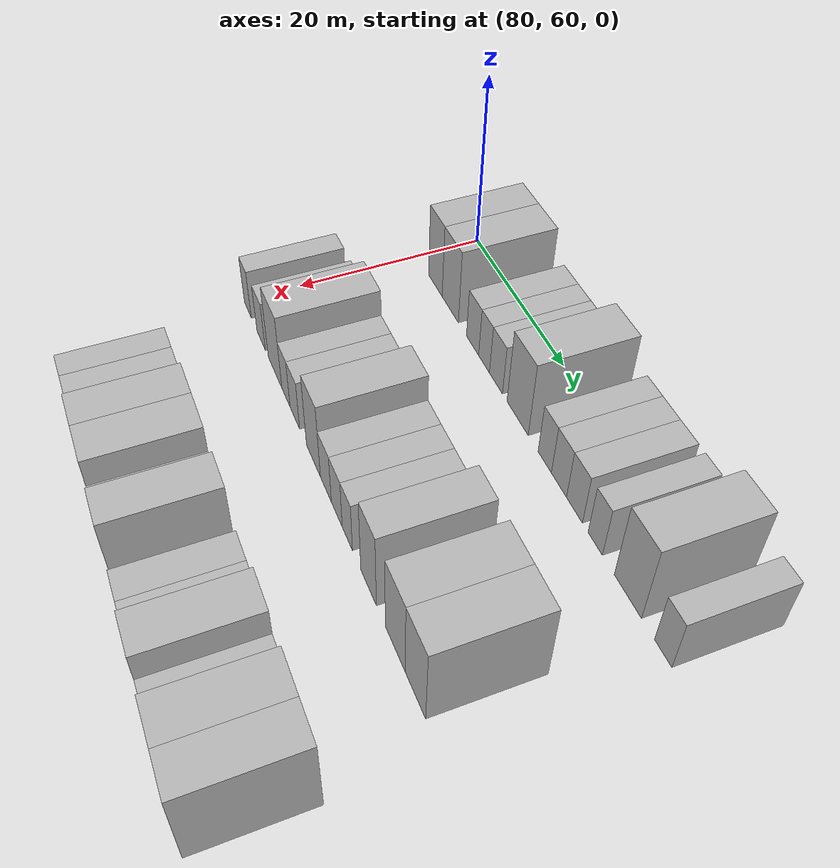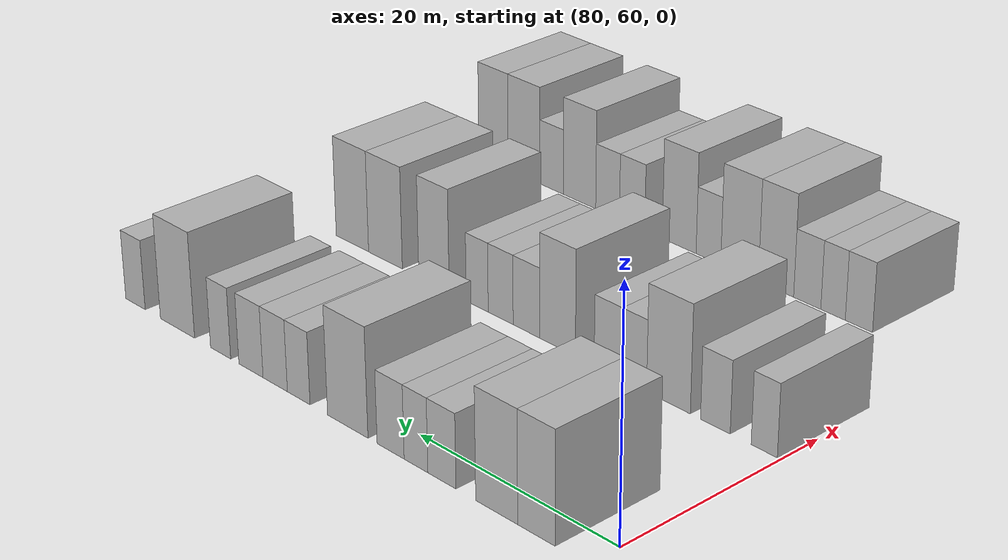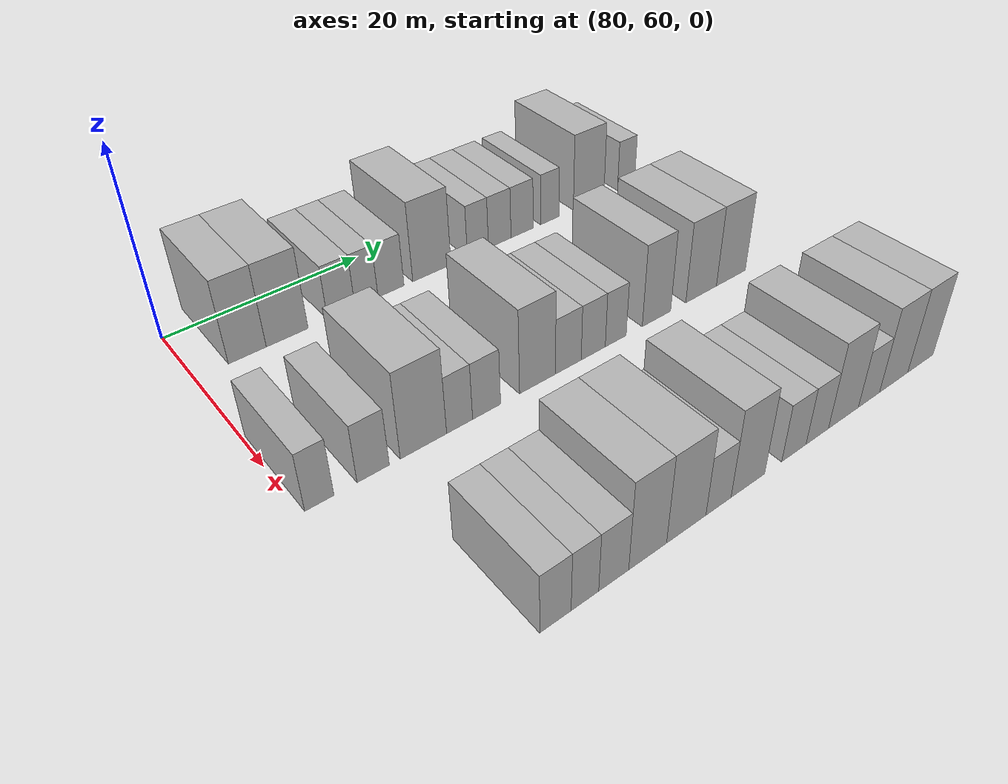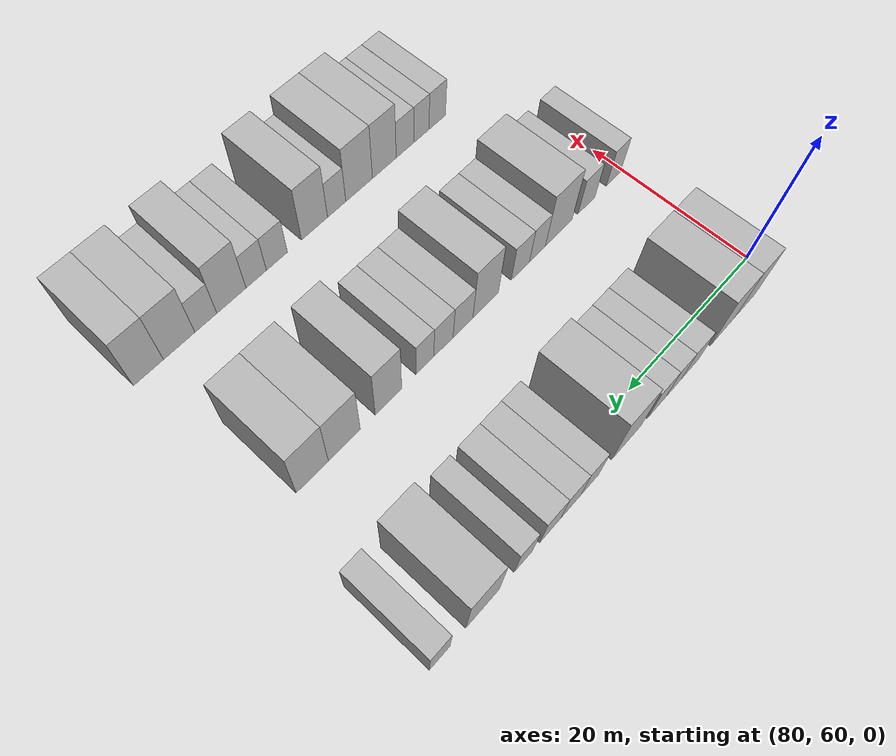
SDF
<sdf version="1.6">
 <world name="default">
  <model name="building_620">
   <static>1</static>
   <pose>82.0000 64.9065 0 0.000000 0.000000 0.000000</pose>
   <link name="link">
    <pose>0 0 4.50 0 0 0</pose>
    <collision name="collision"><geometry><box><size>10.0000 3.6197 9.0000</size></box></geometry></collision>
    <visual name="visual">
     <cast_shadows>0</cast_shadows>
     <geometry><box><size>10.0000 3.6197 9.0000</size></box></geometry>
     <material>
      <script>
       <uri>model://HANNAS_wall/materials/scripts</uri>
       <uri>model://HANNAS_wall/materials/textures</uri>
       <name>vrc/HANNAS_wall</name>
      </script>
     </material>
    </visual>
   </link>
  </model>
  <model name="building_621">
   <static>1</static>
   <pose>82.0000 68.7985 0 0.000000 0.000000 0.000000</pose>
   <link name="link">
    <pose>0 0 4.50 0 0 0</pose>
    <collision name="collision"><geometry><box><size>10.0000 4.1642 9.0000</size></box></geometry></collision>
    <visual name="visual">
     <cast_shadows>0</cast_shadows>
     <geometry><box><size>10.0000 4.1642 9.0000</size></box></geometry>
     <material>
      <script>
       <uri>model://HANNAS_wall/materials/scripts</uri>
       <uri>model://HANNAS_wall/materials/textures</uri>
       <name>vrc/HANNAS_wall</name>
      </script>
     </material>
    </visual>
   </link>
  </model>
  <model name="building_622">
   <static>1</static>
   <pose>82.0000 74.3374 0 0.000000 0.000000 0.000000</pose>
   <link name="link">
    <pose>0 0 3.00 0 0 0</pose>
    <collision name="collision"><geometry><box><size>10.0000 2.9136 6.0000</size></box></geometry></collision>
    <visual name="visual">
     <cast_shadows>0</cast_shadows>
     <geometry><box><size>10.0000 2.9136 6.0000</size></box></geometry>
     <material>
      <script>
       <uri>model://HANNAS_wall/materials/scripts</uri>
       <uri>model://HANNAS_wall/materials/textures</uri>
       <name>vrc/HANNAS_wall</name>
      </script>
     </material>
    </visual>
   </link>
  </model>
  <model name="building_623">
   <static>1</static>
   <pose>82.0000 77.0466 0 0.000000 0.000000 0.000000</pose>
   <link name="link">
    <pose>0 0 3.00 0 0 0</pose>
    <collision name="collision"><geometry><box><size>10.0000 2.5049 6.0000</size></box></geometry></collision>
    <visual name="visual">
     <cast_shadows>0</cast_shadows>
     <geometry><box><size>10.0000 2.5049 6.0000</size></box></geometry>
     <material>
      <script>
       <uri>model://HANNAS_wall/materials/scripts</uri>
       <uri>model://HANNAS_wall/materials/textures</uri>
       <name>vrc/HANNAS_wall</name>
      </script>
     </material>
    </visual>
   </link>
  </model>
  <model name="building_624">
   <static>1</static>
   <pose>82.0000 79.7543 0 0.000000 0.000000 0.000000</pose>
   <link name="link">
    <pose>0 0 3.00 0 0 0</pose>
    <collision name="collision"><geometry><box><size>10.0000 2.9105 6.0000</size></box></geometry></collision>
    <visual name="visual">
     <cast_shadows>0</cast_shadows>
     <geometry><box><size>10.0000 2.9105 6.0000</size></box></geometry>
     <material>
      <script>
       <uri>model://HANNAS_wall/materials/scripts</uri>
       <uri>model://HANNAS_wall/materials/textures</uri>
       <name>vrc/HANNAS_wall</name>
      </script>
     </material>
    </visual>
   </link>
  </model>
  <model name="building_625">
   <static>1</static>
   <pose>82.0000 84.4580 0 0.000000 0.000000 0.000000</pose>
   <link name="link">
    <pose>0 0 4.50 0 0 0</pose>
    <collision name="collision"><geometry><box><size>10.0000 4.4968 9.0000</size></box></geometry></collision>
    <visual name="visual">
     <cast_shadows>0</cast_shadows>
     <geometry><box><size>10.0000 4.4968 9.0000</size></box></geometry>
     <material>
      <script>
       <uri>model://HANNAS_wall/materials/scripts</uri>
       <uri>model://HANNAS_wall/materials/textures</uri>
       <name>vrc/HANNAS_wall</name>
      </script>
     </material>
    </visual>
   </link>
  </model>
  <model name="building_626">
   <static>1</static>
   <pose>82.0000 90.0161 0 0.000000 0.000000 0.000000</pose>
   <link name="link">
    <pose>0 0 3.00 0 0 0</pose>
    <collision name="collision"><geometry><box><size>10.0000 2.6194 6.0000</size></box></geometry></collision>
    <visual name="visual">
     <cast_shadows>0</cast_shadows>
     <geometry><box><size>10.0000 2.6194 6.0000</size></box></geometry>
     <material>
      <script>
       <uri>model://HANNAS_wall/materials/scripts</uri>
       <uri>model://HANNAS_wall/materials/textures</uri>
       <name>vrc/HANNAS_wall</name>
      </script>
     </material>
    </visual>
   </link>
  </model>
  <model name="building_627">
   <static>1</static>
   <pose>82.0000 92.7649 0 0.000000 0.000000 0.000000</pose>
   <link name="link">
    <pose>0 0 3.00 0 0 0</pose>
    <collision name="collision"><geometry><box><size>10.0000 2.8783 6.0000</size></box></geometry></collision>
    <visual name="visual">
     <cast_shadows>0</cast_shadows>
     <geometry><box><size>10.0000 2.8783 6.0000</size></box></geometry>
     <material>
      <script>
       <uri>model://HANNAS_wall/materials/scripts</uri>
       <uri>model://HANNAS_wall/materials/textures</uri>
       <name>vrc/HANNAS_wall</name>
      </script>
     </material>
    </visual>
   </link>
  </model>
  <model name="building_628">
   <static>1</static>
   <pose>82.0000 95.6585 0 0.000000 0.000000 0.000000</pose>
   <link name="link">
    <pose>0 0 3.00 0 0 0</pose>
    <collision name="collision"><geometry><box><size>10.0000 2.9089 6.0000</size></box></geometry></collision>
    <visual name="visual">
     <cast_shadows>0</cast_shadows>
     <geometry><box><size>10.0000 2.9089 6.0000</size></box></geometry>
     <material>
      <script>
       <uri>model://HANNAS_wall/materials/scripts</uri>
       <uri>model://HANNAS_wall/materials/textures</uri>
       <name>vrc/HANNAS_wall</name>
      </script>
     </material>
    </visual>
   </link>
  </model>
  <model name="building_629">
   <static>1</static>
   <pose>82.0000 99.3581 0 0.000000 0.000000 0.000000</pose>
   <link name="link">
    <pose>0 0 3.00 0 0 0</pose>
    <collision name="collision"><geometry><box><size>10.0000 2.4903 6.0000</size></box></geometry></collision>
    <visual name="visual">
     <cast_shadows>0</cast_shadows>
     <geometry><box><size>10.0000 2.4903 6.0000</size></box></geometry>
     <material>
      <script>
       <uri>model://HANNAS_wall/materials/scripts</uri>
       <uri>model://HANNAS_wall/materials/textures</uri>
       <name>vrc/HANNAS_wall</name>
      </script>
     </material>
    </visual>
   </link>
  </model>
  <model name="building_630">
   <static>1</static>
   <pose>82.0000 104.7890 0 0.000000 0.000000 0.000000</pose>
   <link name="link">
    <pose>0 0 4.50 0 0 0</pose>
    <collision name="collision"><geometry><box><size>10.0000 4.3715 9.0000</size></box></geometry></collision>
    <visual name="visual">
     <cast_shadows>0</cast_shadows>
     <geometry><box><size>10.0000 4.3715 9.0000</size></box></geometry>
     <material>
      <script>
       <uri>model://HANNAS_wall/materials/scripts</uri>
       <uri>model://HANNAS_wall/materials/textures</uri>
       <name>vrc/HANNAS_wall</name>
      </script>
     </material>
    </visual>
   </link>
  </model>
  <model name="building_631">
   <static>1</static>
   <pose>82.0000 110.2574 0 0.000000 0.000000 0.000000</pose>
   <link name="link">
    <pose>0 0 3.00 0 0 0</pose>
    <collision name="collision"><geometry><box><size>10.0000 2.5652 6.0000</size></box></geometry></collision>
    <visual name="visual">
     <cast_shadows>0</cast_shadows>
     <geometry><box><size>10.0000 2.5652 6.0000</size></box></geometry>
     <material>
      <script>
       <uri>model://HANNAS_wall/materials/scripts</uri>
       <uri>model://HANNAS_wall/materials/textures</uri>
       <name>vrc/HANNAS_wall</name>
      </script>
     </material>
    </visual>
   </link>
  </model>
  <model name="building_793">
   <static>1</static>
   <pose>101.0000 61.5672 0 0.000000 0.000000 0.000000</pose>
   <link name="link">
    <pose>0 0 3.00 0 0 0</pose>
    <collision name="collision"><geometry><box><size>10.0000 2.4685 6.0000</size></box></geometry></collision>
    <visual name="visual">
     <cast_shadows>0</cast_shadows>
     <geometry><box><size>10.0000 2.4685 6.0000</size></box></geometry>
     <material>
      <script>
       <uri>model://HANNAS_wall/materials/scripts</uri>
       <uri>model://HANNAS_wall/materials/textures</uri>
       <name>vrc/HANNAS_wall</name>
      </script>
     </material>
    </visual>
   </link>
  </model>
  <model name="building_794">
   <static>1</static>
   <pose>101.0000 66.2450 0 0.000000 0.000000 0.000000</pose>
   <link name="link">
    <pose>0 0 3.00 0 0 0</pose>
    <collision name="collision"><geometry><box><size>10.0000 2.8871 6.0000</size></box></geometry></collision>
    <visual name="visual">
     <cast_shadows>0</cast_shadows>
     <geometry><box><size>10.0000 2.8871 6.0000</size></box></geometry>
     <material>
      <script>
       <uri>model://HANNAS_wall/materials/scripts</uri>
       <uri>model://HANNAS_wall/materials/textures</uri>
       <name>vrc/HANNAS_wall</name>
      </script>
     </material>
    </visual>
   </link>
  </model>
  <model name="building_795">
   <static>1</static>
   <pose>101.0000 70.8891 0 0.000000 0.000000 0.000000</pose>
   <link name="link">
    <pose>0 0 4.50 0 0 0</pose>
    <collision name="collision"><geometry><box><size>10.0000 4.4011 9.0000</size></box></geometry></collision>
    <visual name="visual">
     <cast_shadows>0</cast_shadows>
     <geometry><box><size>10.0000 4.4011 9.0000</size></box></geometry>
     <material>
      <script>
       <uri>model://HANNAS_wall/materials/scripts</uri>
       <uri>model://HANNAS_wall/materials/textures</uri>
       <name>vrc/HANNAS_wall</name>
      </script>
     </material>
    </visual>
   </link>
  </model>
  <model name="building_796">
   <static>1</static>
   <pose>101.0000 74.3769 0 0.000000 0.000000 0.000000</pose>
   <link name="link">
    <pose>0 0 3.00 0 0 0</pose>
    <collision name="collision"><geometry><box><size>10.0000 2.5745 6.0000</size></box></geometry></collision>
    <visual name="visual">
     <cast_shadows>0</cast_shadows>
     <geometry><box><size>10.0000 2.5745 6.0000</size></box></geometry>
     <material>
      <script>
       <uri>model://HANNAS_wall/materials/scripts</uri>
       <uri>model://HANNAS_wall/materials/textures</uri>
       <name>vrc/HANNAS_wall</name>
      </script>
     </material>
    </visual>
   </link>
  </model>
  <model name="building_797">
   <static>1</static>
   <pose>101.0000 77.0987 0 0.000000 0.000000 0.000000</pose>
   <link name="link">
    <pose>0 0 3.00 0 0 0</pose>
    <collision name="collision"><geometry><box><size>10.0000 2.8692 6.0000</size></box></geometry></collision>
    <visual name="visual">
     <cast_shadows>0</cast_shadows>
     <geometry><box><size>10.0000 2.8692 6.0000</size></box></geometry>
     <material>
      <script>
       <uri>model://HANNAS_wall/materials/scripts</uri>
       <uri>model://HANNAS_wall/materials/textures</uri>
       <name>vrc/HANNAS_wall</name>
      </script>
     </material>
    </visual>
   </link>
  </model>
  <model name="building_798">
   <static>1</static>
   <pose>101.0000 82.4894 0 0.000000 0.000000 0.000000</pose>
   <link name="link">
    <pose>0 0 4.50 0 0 0</pose>
    <collision name="collision"><geometry><box><size>10.0000 3.9121 9.0000</size></box></geometry></collision>
    <visual name="visual">
     <cast_shadows>0</cast_shadows>
     <geometry><box><size>10.0000 3.9121 9.0000</size></box></geometry>
     <material>
      <script>
       <uri>model://HANNAS_wall/materials/scripts</uri>
       <uri>model://HANNAS_wall/materials/textures</uri>
       <name>vrc/HANNAS_wall</name>
      </script>
     </material>
    </visual>
   </link>
  </model>
  <model name="building_799">
   <static>1</static>
   <pose>101.0000 85.9104 0 0.000000 0.000000 0.000000</pose>
   <link name="link">
    <pose>0 0 3.00 0 0 0</pose>
    <collision name="collision"><geometry><box><size>10.0000 2.9300 6.0000</size></box></geometry></collision>
    <visual name="visual">
     <cast_shadows>0</cast_shadows>
     <geometry><box><size>10.0000 2.9300 6.0000</size></box></geometry>
     <material>
      <script>
       <uri>model://HANNAS_wall/materials/scripts</uri>
       <uri>model://HANNAS_wall/materials/textures</uri>
       <name>vrc/HANNAS_wall</name>
      </script>
     </material>
    </visual>
   </link>
  </model>
  <model name="building_800">
   <static>1</static>
   <pose>101.0000 88.7899 0 0.000000 0.000000 0.000000</pose>
   <link name="link">
    <pose>0 0 3.00 0 0 0</pose>
    <collision name="collision"><geometry><box><size>10.0000 2.8289 6.0000</size></box></geometry></collision>
    <visual name="visual">
     <cast_shadows>0</cast_shadows>
     <geometry><box><size>10.0000 2.8289 6.0000</size></box></geometry>
     <material>
      <script>
       <uri>model://HANNAS_wall/materials/scripts</uri>
       <uri>model://HANNAS_wall/materials/textures</uri>
       <name>vrc/HANNAS_wall</name>
      </script>
     </material>
    </visual>
   </link>
  </model>
  <model name="building_801">
   <static>1</static>
   <pose>101.0000 91.4685 0 0.000000 0.000000 0.000000</pose>
   <link name="link">
    <pose>0 0 3.00 0 0 0</pose>
    <collision name="collision"><geometry><box><size>10.0000 2.5284 6.0000</size></box></geometry></collision>
    <visual name="visual">
     <cast_shadows>0</cast_shadows>
     <geometry><box><size>10.0000 2.5284 6.0000</size></box></geometry>
     <material>
      <script>
       <uri>model://HANNAS_wall/materials/scripts</uri>
       <uri>model://HANNAS_wall/materials/textures</uri>
       <name>vrc/HANNAS_wall</name>
      </script>
     </material>
    </visual>
   </link>
  </model>
  <model name="building_802">
   <static>1</static>
   <pose>101.0000 96.5465 0 0.000000 0.000000 0.000000</pose>
   <link name="link">
    <pose>0 0 4.50 0 0 0</pose>
    <collision name="collision"><geometry><box><size>10.0000 3.6277 9.0000</size></box></geometry></collision>
    <visual name="visual">
     <cast_shadows>0</cast_shadows>
     <geometry><box><size>10.0000 3.6277 9.0000</size></box></geometry>
     <material>
      <script>
       <uri>model://HANNAS_wall/materials/scripts</uri>
       <uri>model://HANNAS_wall/materials/textures</uri>
       <name>vrc/HANNAS_wall</name>
      </script>
     </material>
    </visual>
   </link>
  </model>
  <model name="building_803">
   <static>1</static>
   <pose>101.0000 102.4520 0 0.000000 0.000000 0.000000</pose>
   <link name="link">
    <pose>0 0 4.50 0 0 0</pose>
    <collision name="collision"><geometry><box><size>10.0000 4.1833 9.0000</size></box></geometry></collision>
    <visual name="visual">
     <cast_shadows>0</cast_shadows>
     <geometry><box><size>10.0000 4.1833 9.0000</size></box></geometry>
     <material>
      <script>
       <uri>model://HANNAS_wall/materials/scripts</uri>
       <uri>model://HANNAS_wall/materials/textures</uri>
       <name>vrc/HANNAS_wall</name>
      </script>
     </material>
    </visual>
   </link>
  </model>
  <model name="building_804">
   <static>1</static>
   <pose>101.0000 106.5949 0 0.000000 0.000000 0.000000</pose>
   <link name="link">
    <pose>0 0 4.50 0 0 0</pose>
    <collision name="collision"><geometry><box><size>10.0000 4.1025 9.0000</size></box></geometry></collision>
    <visual name="visual">
     <cast_shadows>0</cast_shadows>
     <geometry><box><size>10.0000 4.1025 9.0000</size></box></geometry>
     <material>
      <script>
       <uri>model://HANNAS_wall/materials/scripts</uri>
       <uri>model://HANNAS_wall/materials/textures</uri>
       <name>vrc/HANNAS_wall</name>
      </script>
     </material>
    </visual>
   </link>
  </model>
  <model name="building_968">
   <static>1</static>
   <pose>120.0000 68.7895 0 0.000000 0.000000 0.000000</pose>
   <link name="link">
    <pose>0 0 3.00 0 0 0</pose>
    <collision name="collision"><geometry><box><size>10.0000 2.7135 6.0000</size></box></geometry></collision>
    <visual name="visual">
     <cast_shadows>0</cast_shadows>
     <geometry><box><size>10.0000 2.7135 6.0000</size></box></geometry>
     <material>
      <script>
       <uri>model://HANNAS_wall/materials/scripts</uri>
       <uri>model://HANNAS_wall/materials/textures</uri>
       <name>vrc/HANNAS_wall</name>
      </script>
     </material>
    </visual>
   </link>
  </model>
  <model name="building_969">
   <static>1</static>
   <pose>120.0000 71.3852 0 0.000000 0.000000 0.000000</pose>
   <link name="link">
    <pose>0 0 3.00 0 0 0</pose>
    <collision name="collision"><geometry><box><size>10.0000 2.4778 6.0000</size></box></geometry></collision>
    <visual name="visual">
     <cast_shadows>0</cast_shadows>
     <geometry><box><size>10.0000 2.4778 6.0000</size></box></geometry>
     <material>
      <script>
       <uri>model://HANNAS_wall/materials/scripts</uri>
       <uri>model://HANNAS_wall/materials/textures</uri>
       <name>vrc/HANNAS_wall</name>
      </script>
     </material>
    </visual>
   </link>
  </model>
  <model name="building_970">
   <static>1</static>
   <pose>120.0000 74.0225 0 0.000000 0.000000 0.000000</pose>
   <link name="link">
    <pose>0 0 3.00 0 0 0</pose>
    <collision name="collision"><geometry><box><size>10.0000 2.7969 6.0000</size></box></geometry></collision>
    <visual name="visual">
     <cast_shadows>0</cast_shadows>
     <geometry><box><size>10.0000 2.7969 6.0000</size></box></geometry>
     <material>
      <script>
       <uri>model://HANNAS_wall/materials/scripts</uri>
       <uri>model://HANNAS_wall/materials/textures</uri>
       <name>vrc/HANNAS_wall</name>
      </script>
     </material>
    </visual>
   </link>
  </model>
  <model name="building_971">
   <static>1</static>
   <pose>120.0000 77.2752 0 0.000000 0.000000 0.000000</pose>
   <link name="link">
    <pose>0 0 4.50 0 0 0</pose>
    <collision name="collision"><geometry><box><size>10.0000 3.7085 9.0000</size></box></geometry></collision>
    <visual name="visual">
     <cast_shadows>0</cast_shadows>
     <geometry><box><size>10.0000 3.7085 9.0000</size></box></geometry>
     <material>
      <script>
       <uri>model://HANNAS_wall/materials/scripts</uri>
       <uri>model://HANNAS_wall/materials/textures</uri>
       <name>vrc/HANNAS_wall</name>
      </script>
     </material>
    </visual>
   </link>
  </model>
  <model name="building_972">
   <static>1</static>
   <pose>120.0000 81.1595 0 0.000000 0.000000 0.000000</pose>
   <link name="link">
    <pose>0 0 4.50 0 0 0</pose>
    <collision name="collision"><geometry><box><size>10.0000 4.0600 9.0000</size></box></geometry></collision>
    <visual name="visual">
     <cast_shadows>0</cast_shadows>
     <geometry><box><size>10.0000 4.0600 9.0000</size></box></geometry>
     <material>
      <script>
       <uri>model://HANNAS_wall/materials/scripts</uri>
       <uri>model://HANNAS_wall/materials/textures</uri>
       <name>vrc/HANNAS_wall</name>
      </script>
     </material>
    </visual>
   </link>
  </model>
  <model name="building_973">
   <static>1</static>
   <pose>120.0000 84.5450 0 0.000000 0.000000 0.000000</pose>
   <link name="link">
    <pose>0 0 3.00 0 0 0</pose>
    <collision name="collision"><geometry><box><size>10.0000 2.7111 6.0000</size></box></geometry></collision>
    <visual name="visual">
     <cast_shadows>0</cast_shadows>
     <geometry><box><size>10.0000 2.7111 6.0000</size></box></geometry>
     <material>
      <script>
       <uri>model://HANNAS_wall/materials/scripts</uri>
       <uri>model://HANNAS_wall/materials/textures</uri>
       <name>vrc/HANNAS_wall</name>
      </script>
     </material>
    </visual>
   </link>
  </model>
  <model name="building_974">
   <static>1</static>
   <pose>120.0000 87.8004 0 0.000000 0.000000 0.000000</pose>
   <link name="link">
    <pose>0 0 4.50 0 0 0</pose>
    <collision name="collision"><geometry><box><size>10.0000 3.7995 9.0000</size></box></geometry></collision>
    <visual name="visual">
     <cast_shadows>0</cast_shadows>
     <geometry><box><size>10.0000 3.7995 9.0000</size></box></geometry>
     <material>
      <script>
       <uri>model://HANNAS_wall/materials/scripts</uri>
       <uri>model://HANNAS_wall/materials/textures</uri>
       <name>vrc/HANNAS_wall</name>
      </script>
     </material>
    </visual>
   </link>
  </model>
  <model name="building_975">
   <static>1</static>
   <pose>120.0000 93.1714 0 0.000000 0.000000 0.000000</pose>
   <link name="link">
    <pose>0 0 3.00 0 0 0</pose>
    <collision name="collision"><geometry><box><size>10.0000 2.9425 6.0000</size></box></geometry></collision>
    <visual name="visual">
     <cast_shadows>0</cast_shadows>
     <geometry><box><size>10.0000 2.9425 6.0000</size></box></geometry>
     <material>
      <script>
       <uri>model://HANNAS_wall/materials/scripts</uri>
       <uri>model://HANNAS_wall/materials/textures</uri>
       <name>vrc/HANNAS_wall</name>
      </script>
     </material>
    </visual>
   </link>
  </model>
  <model name="building_976">
   <static>1</static>
   <pose>120.0000 96.0459 0 0.000000 0.000000 0.000000</pose>
   <link name="link">
    <pose>0 0 3.00 0 0 0</pose>
    <collision name="collision"><geometry><box><size>10.0000 2.8065 6.0000</size></box></geometry></collision>
    <visual name="visual">
     <cast_shadows>0</cast_shadows>
     <geometry><box><size>10.0000 2.8065 6.0000</size></box></geometry>
     <material>
      <script>
       <uri>model://HANNAS_wall/materials/scripts</uri>
       <uri>model://HANNAS_wall/materials/textures</uri>
       <name>vrc/HANNAS_wall</name>
      </script>
     </material>
    </visual>
   </link>
  </model>
  <model name="building_977">
   <static>1</static>
   <pose>120.0000 99.4051 0 0.000000 0.000000 0.000000</pose>
   <link name="link">
    <pose>0 0 4.50 0 0 0</pose>
    <collision name="collision"><geometry><box><size>10.0000 3.9120 9.0000</size></box></geometry></collision>
    <visual name="visual">
     <cast_shadows>0</cast_shadows>
     <geometry><box><size>10.0000 3.9120 9.0000</size></box></geometry>
     <material>
      <script>
       <uri>model://HANNAS_wall/materials/scripts</uri>
       <uri>model://HANNAS_wall/materials/textures</uri>
       <name>vrc/HANNAS_wall</name>
      </script>
     </material>
    </visual>
   </link>
  </model>
  <model name="building_978">
   <static>1</static>
   <pose>120.0000 102.7981 0 0.000000 0.000000 0.000000</pose>
   <link name="link">
    <pose>0 0 3.00 0 0 0</pose>
    <collision name="collision"><geometry><box><size>10.0000 2.8739 6.0000</size></box></geometry></collision>
    <visual name="visual">
     <cast_shadows>0</cast_shadows>
     <geometry><box><size>10.0000 2.8739 6.0000</size></box></geometry>
     <material>
      <script>
       <uri>model://HANNAS_wall/materials/scripts</uri>
       <uri>model://HANNAS_wall/materials/textures</uri>
       <name>vrc/HANNAS_wall</name>
      </script>
     </material>
    </visual>
   </link>
  </model>
  <model name="building_979">
   <static>1</static>
   <pose>120.0000 106.2385 0 0.000000 0.000000 0.000000</pose>
   <link name="link">
    <pose>0 0 4.50 0 0 0</pose>
    <collision name="collision"><geometry><box><size>10.0000 4.0067 9.0000</size></box></geometry></collision>
    <visual name="visual">
     <cast_shadows>0</cast_shadows>
     <geometry><box><size>10.0000 4.0067 9.0000</size></box></geometry>
     <material>
      <script>
       <uri>model://HANNAS_wall/materials/scripts</uri>
       <uri>model://HANNAS_wall/materials/textures</uri>
       <name>vrc/HANNAS_wall</name>
      </script>
     </material>
    </visual>
   </link>
  </model>
  <model name="building_980">
   <static>1</static>
   <pose>120.0000 110.1109 0 0.000000 0.000000 0.000000</pose>
   <link name="link">
    <pose>0 0 4.50 0 0 0</pose>
    <collision name="collision"><geometry><box><size>10.0000 3.7381 9.0000</size></box></geometry></collision>
    <visual name="visual">
     <cast_shadows>0</cast_shadows>
     <geometry><box><size>10.0000 3.7381 9.0000</size></box></geometry>
     <material>
      <script>
       <uri>model://HANNAS_wall/materials/scripts</uri>
       <uri>model://HANNAS_wall/materials/textures</uri>
       <name>vrc/HANNAS_wall</name>
      </script>
     </material>
    </visual>
   </link>
  </model>
 </world>
</sdf>
